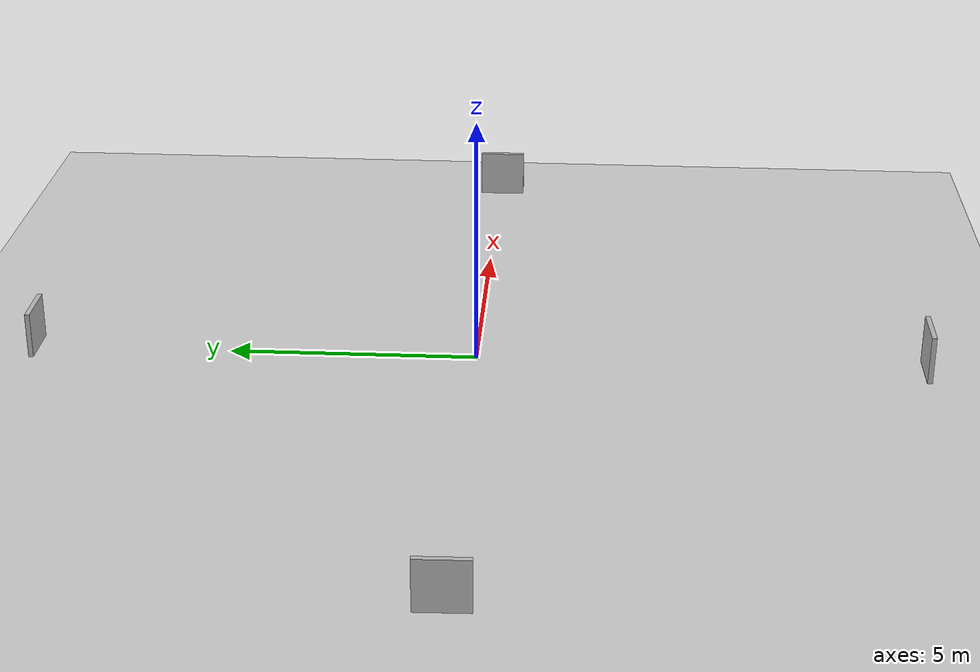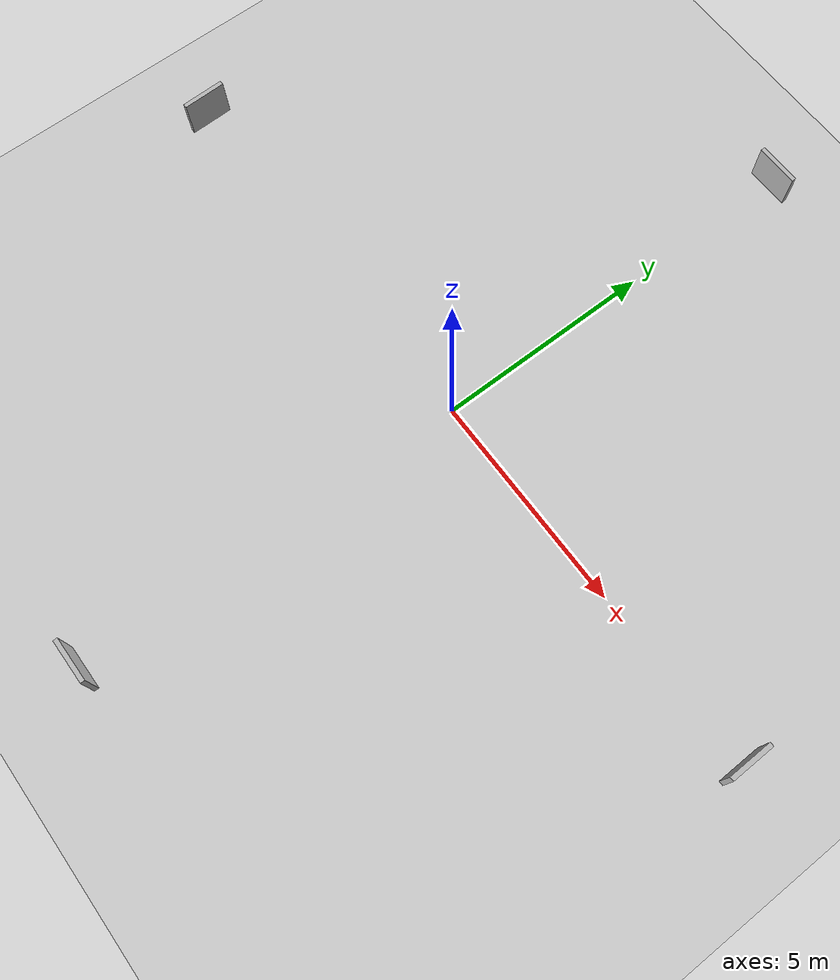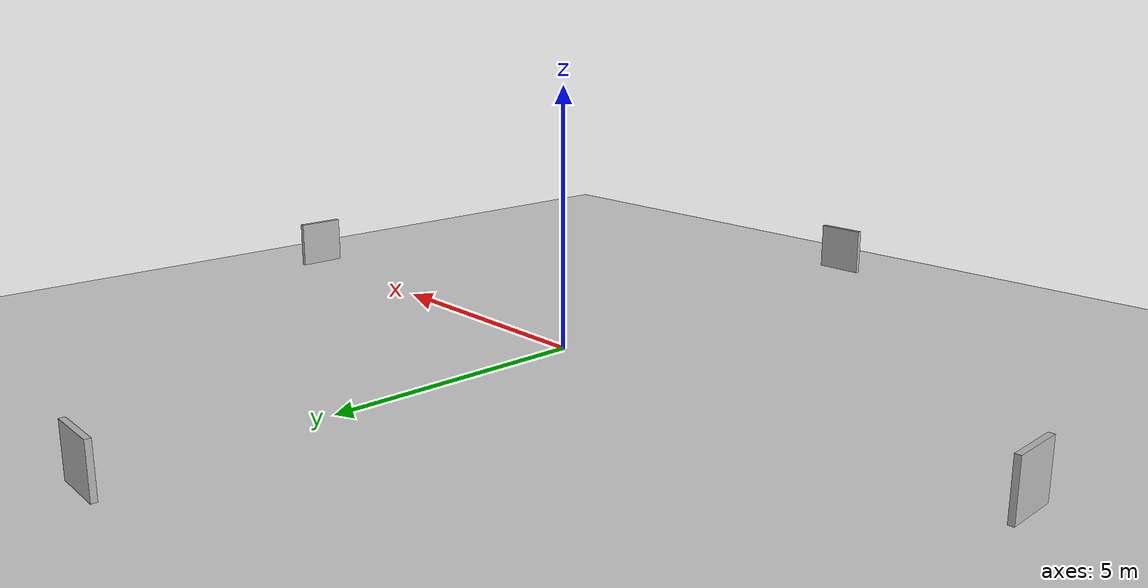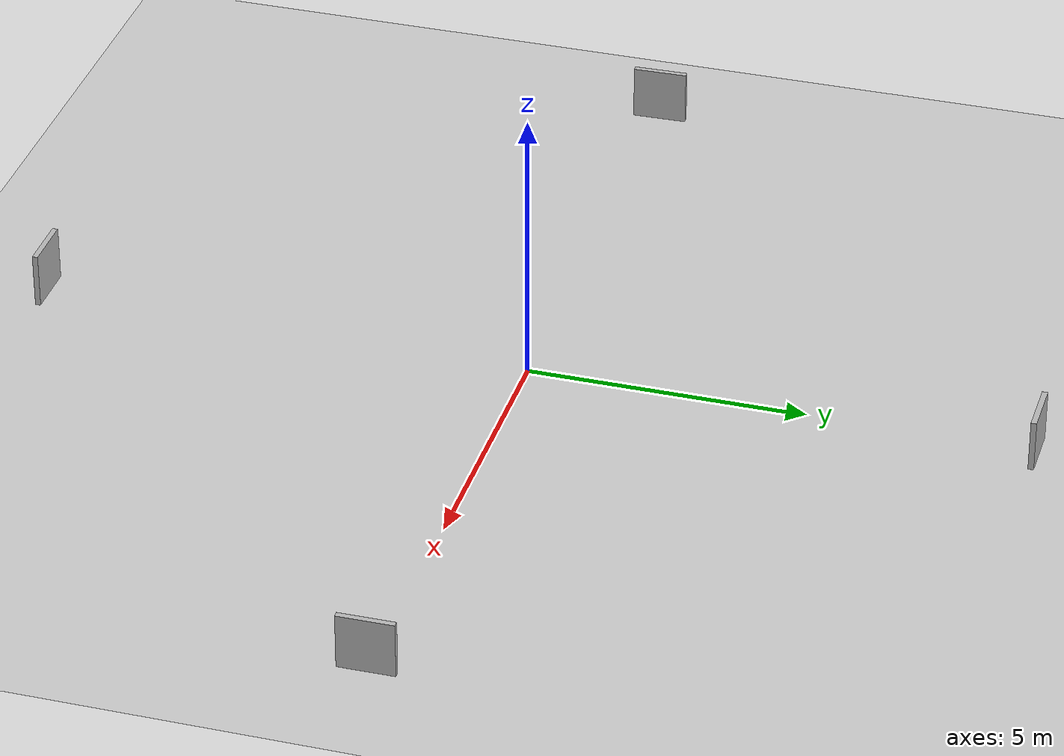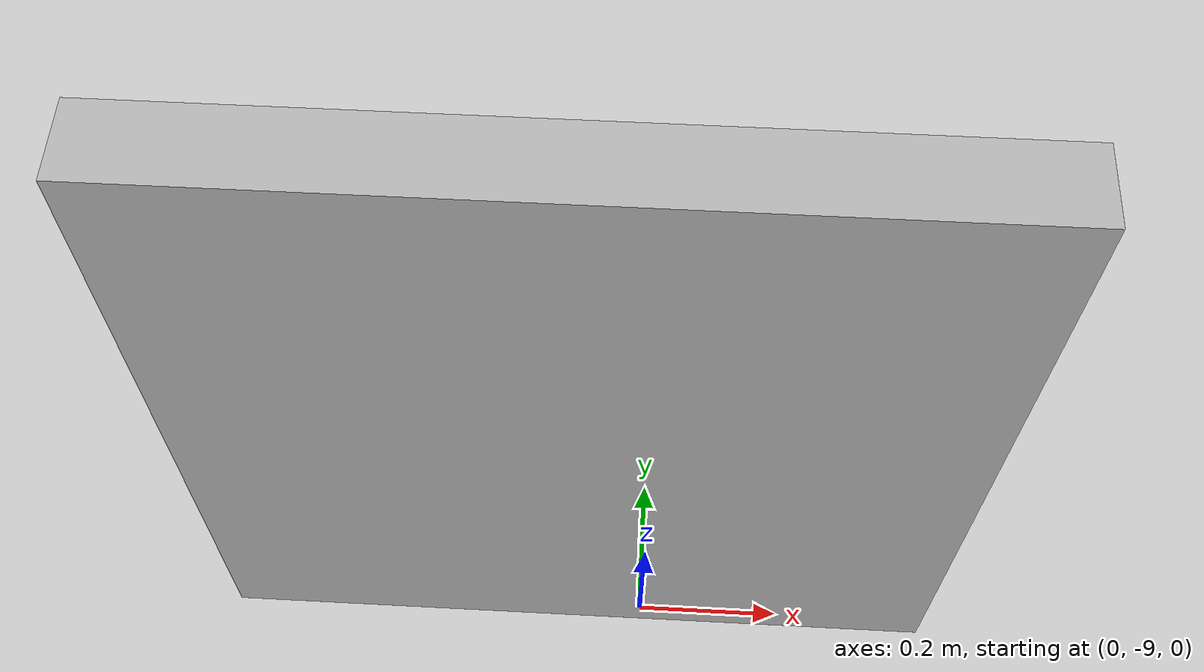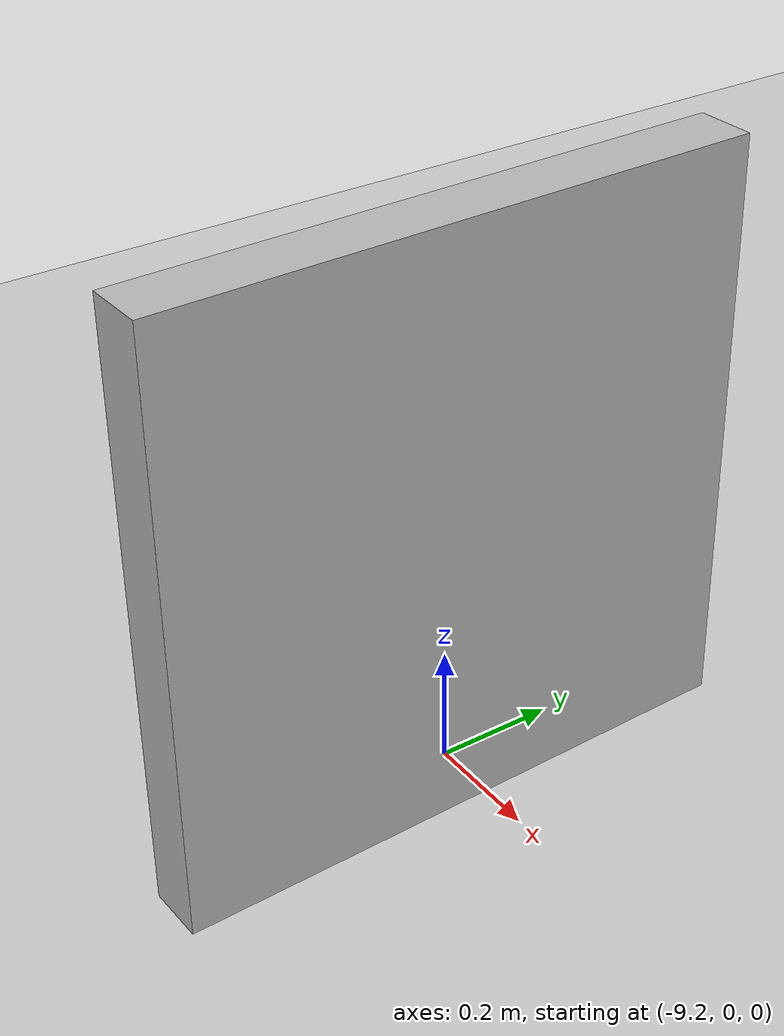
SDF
<sdf version="1.7">
 <world name="default">
  <light name="sun" type="directional">
   <pose>0 0 10 0 -0 0</pose>
   <diffuse>0.8 0.8 0.8 1</diffuse>
   <specular>0.2 0.2 0.2 1</specular>
   <attenuation>
    <range>1000</range>
    <constant>0.9</constant>
    <linear>0.01</linear>
    <quadratic>0.001</quadratic>
   </attenuation>
   <direction>-0.5 0.1 -0.9</direction>
   <spot><inner_angle>0</inner_angle><outer_angle>0</outer_angle><falloff>0</falloff></spot>
  </light>
  <model name="ground_plane">
   <static>1</static>
   <link name="link">
    <collision name="collision">
     <geometry><plane><normal>0 0 1</normal><size>100 100</size></plane></geometry>
     <surface>
      <contact><collide_bitmask>65535</collide_bitmask></contact>
      <friction><ode><mu>100</mu><mu2>50</mu2></ode></friction>
     </surface>
    </collision>
    <visual name="visual">
     <cast_shadows>0</cast_shadows>
     <geometry><plane><normal>0 0 1</normal><size>100 100</size></plane></geometry>
     <material>
      <script><uri>file://media/materials/scripts/gazebo.material</uri><name>Gazebo/Grey</name></script>
     </material>
    </visual>
   </link>
  </model>
  <gravity>0 0 -9.8</gravity>
  <magnetic_field>6e-06 2.3e-05 -4.2e-05</magnetic_field>
  <atmosphere type="adiabatic"/>
  <physics type="ode">
   <max_step_size>0.001</max_step_size>
   <real_time_factor>1</real_time_factor>
   <real_time_update_rate>1000</real_time_update_rate>
  </physics>
  <scene><ambient>0.4 0.4 0.4 1</ambient><background>0.7 0.7 0.7 1</background><shadows>1</shadows></scene>
  <spherical_coordinates>
   <surface_model>EARTH_WGS84</surface_model>
   <latitude_deg>0</latitude_deg>
   <longitude_deg>0</longitude_deg>
   <elevation>0</elevation>
   <heading_deg>0</heading_deg>
  </spherical_coordinates>
  <model name="QR_Wall">
   <static>1</static>
   <link name="link">
    <pose>0 0 1.4 0 -0 0</pose>
    <collision name="collision"><geometry><box><size>1 0.1 1</size></box></geometry></collision>
    <visual name="visual">
     <cast_shadows>0</cast_shadows>
     <geometry><box><size>1 0.1 1</size></box></geometry>
     <material>
      <script>
       <uri>model://QR_Wall/materials/scripts</uri>
       <uri>model://QR_Wall/materials/textures</uri>
       <name>vrc/QR_Wall</name>
      </script>
     </material>
    </visual>
   </link>
   <pose>0.02075 9.01447 -0.988481 0 -0 0</pose>
  </model>
  <model name="QR_Wall_0">
   <static>1</static>
   <link name="link">
    <pose>0 0 1.4 0 -0 0</pose>
    <collision name="collision"><geometry><box><size>1 0.1 1</size></box></geometry></collision>
    <visual name="visual">
     <cast_shadows>0</cast_shadows>
     <geometry><box><size>1 0.1 1</size></box></geometry>
     <material>
      <script>
       <uri>model://QR_Wall/materials/scripts</uri>
       <uri>model://QR_Wall/materials/textures</uri>
       <name>vrc/QR_Wall</name>
      </script>
     </material>
    </visual>
   </link>
   <pose>-0.093915 -8.97318 -0.88387 0 -0 0</pose>
  </model>
  <model name="QR_Wall_1">
   <static>1</static>
   <link name="link">
    <pose>0 0 1.4 0 -0 0</pose>
    <collision name="collision"><geometry><box><size>1 0.1 1</size></box></geometry></collision>
    <visual name="visual">
     <cast_shadows>0</cast_shadows>
     <geometry><box><size>1 0.1 1</size></box></geometry>
     <material>
      <script>
       <uri>model://QR_Wall/materials/scripts</uri>
       <uri>model://QR_Wall/materials/textures</uri>
       <name>vrc/QR_Wall</name>
      </script>
     </material>
    </visual>
   </link>
   <pose>9.04472 -0.044196 -0.897432 0 -0 1.58114</pose>
  </model>
  <model name="QR_Wall_2">
   <static>1</static>
   <link name="link">
    <pose>0 0 1.4 0 -0 0</pose>
    <collision name="collision"><geometry><box><size>1 0.1 1</size></box></geometry></collision>
    <visual name="visual">
     <cast_shadows>0</cast_shadows>
     <geometry><box><size>1 0.1 1</size></box></geometry>
     <material>
      <script>
       <uri>model://QR_Wall/materials/scripts</uri>
       <uri>model://QR_Wall/materials/textures</uri>
       <name>vrc/QR_Wall</name>
      </script>
     </material>
    </visual>
   </link>
   <pose>-9.13819 -0.035987 -0.907362 0 -0 1.59491</pose>
  </model>
 </world>
</sdf>
